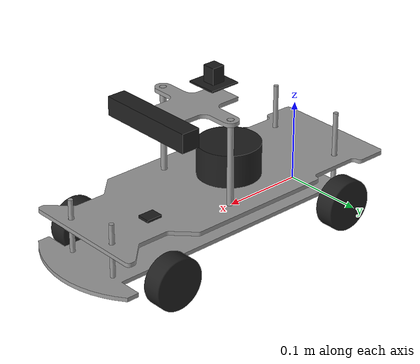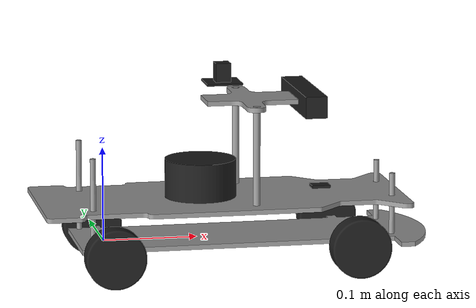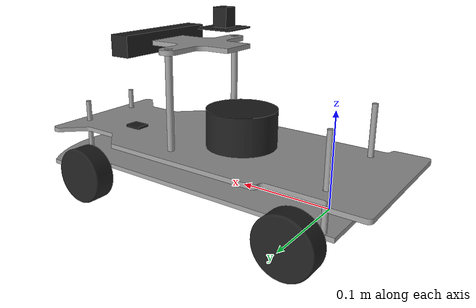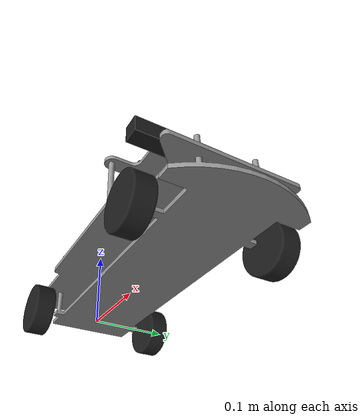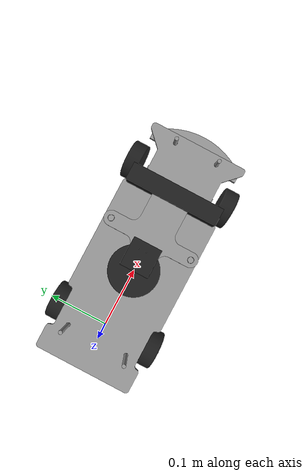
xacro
<?xml version="1.0"?>

<robot name="seat_car" xmlns:xacro="http://www.ros.org/wiki/xacro">

  <!-- Included URDF Files -->
  <xacro:include filename="$(find seat_car_description)/urdf/include/materials.xacro" />

  <xacro:include filename="$(find seat_car_description)/urdf/include/platform.xacro" />
  <xacro:include filename="$(find seat_car_description)/urdf/include/platform.gazebo" />

  <xacro:include filename="$(find seat_car_description)/urdf/include/sensors.xacro" />
  <xacro:include filename="$(find seat_car_description)/urdf/include/sensors.gazebo" />

  <!-- gazebo sensors -->
  <xacro:include filename="$(find seat_car_description)/urdf/include/sensors/imu.gazebo" />
  <xacro:include filename="$(find seat_car_description)/urdf/include/sensors/laser.gazebo" />
  <xacro:include filename="$(find seat_car_description)/urdf/include/sensors/front_camera.gazebo" />
  <xacro:include filename="$(find seat_car_description)/urdf/include/sensors/gps_camera.gazebo" />

</robot>

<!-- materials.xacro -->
<root xmlns:xacro="http://ros.org/wiki/xacro">

  <material name="blue">
    <color rgba="0 0 1 1.0"/>
  </material>

  <material name="green">
    <color rgba="0 1 0 1.0"/>
  </material>

  <material name="red">
    <color rgba="1 0 0 1.0"/>
  </material>

  <material name="orange">
    <color rgba="0.93 0.44 0.01 1.0"/>
  </material>

  <material name="black">
    <color rgba="0 0 0 1.0"/>
  </material>

  <material name="white">
    <color rgba="0.9 0.9 0.9 1.0"/>
  </material>

  <material name="purple">
    <color rgba="0.5 0.0 0.5 1.0"/>
  </material>

  <material name="yellow">
    <color rgba="1.0 1.0 0.0 1.0"/>
  </material>

  <material name="grey">
    <color rgba="0.4 0.4 0.4 1.0"/>
  </material>

</root>

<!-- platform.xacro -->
<robot name="seat_car" xmlns:xacro="http://www.ros.org/wiki/xacro">

  <!-- Included URDF Files -->

  <!-- base_footprint is a fictitious link(frame) that is on the ground right below base_link origin,
       navigation stack depends on this frame -->
  <link name="base_link">
    <inertial>
      <mass value="6" />
      <origin xyz="0.15971917 0.00000000 0.00197764" />
      <inertia ixx="0.0067970" ixy="0.0" ixz="-0.0008808"
               iyy="0.0784672" iyz="0.0"
               izz="0.0838770" />
    </inertial>
    <visual>
      <origin xyz="0 0 0" rpy="0 0 0" />
      <geometry>
        <mesh filename="package://seat_car_description/meshes/chassis.stl"/>
      </geometry>
      <material name="Grey" />
    </visual>
    <collision>
      <origin xyz="0 0 0" rpy="0 0 0" />
      <geometry>
        <mesh filename="package://seat_car_description/meshes/chassis.stl"/>
      </geometry>
    </collision>
  </link>

  <joint name="base_link_rear_left_wheel_joint" type="revolute">
    <origin xyz="0.0 -0.0825 0" rpy="1.5707 0 0" />
    <axis xyz="0 0 1" />
    <anchor xyz="0 0 0" />
    <parent link="base_link" />
    <child link="rear_left_wheel_link" />
    <limit lower="-1000000000000.0" upper="1000000000000.0" effort="3.0" velocity="124"/>
  </joint>

  <transmission name="tran_rear_left">
    <type>transmission_interface/SimpleTransmission</type>
    <joint name="base_link_rear_left_wheel_joint">
      <hardwareInterface>EffortJointInterface</hardwareInterface>
    </joint>
    <actuator name="rear_left_motor">
      <hardwareInterface>EffortJointInterface</hardwareInterface>
      <mechanicalReduction>1</mechanicalReduction>
    </actuator>
  </transmission>

  <link name="rear_left_wheel_link">
    <inertial>
      <mass value="1" />
      <origin xyz="0 0 0" rpy="0 0 0" />
      <inertia  ixx="0.0002946" ixy="0.0" ixz="0.0"
                iyy="0.0002946" iyz="0.0"
                izz="0.000494" />
    </inertial>
    <visual>
      <origin xyz="0 0 0" rpy="0 0 0" />
      <geometry>
        <mesh filename="package://seat_car_description/meshes/wheel.stl"/>
      </geometry>
      <material name="Black" />
    </visual>
    <collision>
      <origin xyz="0 0 0" rpy="0 0 0" />
      <geometry>
        <cylinder radius="0.0315" length="0.001"/>
      </geometry>
    </collision>
  </link>

  <joint name="base_link_rear_right_wheel_joint" type="revolute">
    <origin xyz="0.0 0.0825 0" rpy="-1.5707 0 0" />
    <axis xyz="0 0 1" />
    <anchor xyz="0 0 0" />
    <parent link="base_link" />
    <child link="rear_right_wheel_link" />
    <limit lower="-1000000000000.0" upper="1000000000000.0" effort="3.0" velocity="124"/>
  </joint>

  <transmission name="tran_rear_right">
    <type>transmission_interface/SimpleTransmission</type>
    <joint name="base_link_rear_right_wheel_joint">
      <hardwareInterface>EffortJointInterface</hardwareInterface>
    </joint>
    <actuator name="rear_right_motor">
      <hardwareInterface>EffortJointInterface</hardwareInterface>
      <mechanicalReduction>1</mechanicalReduction>
    </actuator>
  </transmission>

  <link name="rear_right_wheel_link">
    <inertial>
      <mass value="1" />
      <origin xyz="0 0 0" rpy="0 0 0" />
      <inertia  ixx="0.0002946" ixy="0.0" ixz="0.0"
                iyy="0.0002946" iyz="0.0"
                izz="0.0004940" />
    </inertial>
    <visual>
      <origin xyz="0 0 0" rpy="0 0 0" />
      <geometry>
        <mesh filename="package://seat_car_description/meshes/wheel.stl"/>
      </geometry>
      <material name="Black" />
    </visual>
    <collision>
      <origin xyz="0 0 0" rpy="0 0 0" />
      <geometry>
        <cylinder radius="0.0315" length="0.001"/>
      </geometry>
    </collision>
  </link>

  <joint name="base_link_front_left_axel_joint" type="revolute">
    <origin xyz="0.260 -0.0825 0" rpy="1.5707 0 0" />
    <axis xyz="0 1 0" />
    <anchor xyz="0 0 0" />
    <parent link="base_link" />
    <child link="front_left_axel_link" />
    <limit lower="-1.5707" upper="1.5707" effort="9.6" velocity="5.3"/>
    <dynamics damping="0.2"/>
  </joint>

  <transmission name="tran_front_left_axel">
    <type>transmission_interface/SimpleTransmission</type>
    <joint name="base_link_front_left_axel_joint">
      <hardwareInterface>EffortJointInterface</hardwareInterface>
    </joint>
    <actuator name="front_left_axel_motor">
      <hardwareInterface>EffortJointInterface</hardwareInterface>
      <mechanicalReduction>1</mechanicalReduction>
    </actuator>
  </transmission>

  <link name="front_left_axel_link">
    <inertial>
      <mass value="0.001" />
      <origin xyz="0 0 0" rpy="0 0 0" />
      <inertia  ixx="0.00001" ixy="0.0" ixz="0.0"
                iyy="0.00001" iyz="0.0"
                izz="0.00001" />
    </inertial>
  </link>

  <joint name="front_left_axel_front_left_wheel_joint" type="revolute">
    <origin xyz="0.0 0.0 0" rpy="0 0 0" />
    <axis xyz="0 0 1" />
    <anchor xyz="0 0 0" />
    <parent link="front_left_axel_link" />
    <child link="front_left_wheel_link" />
    <limit lower="-1000000000000.0" upper="1000000000000.0" effort="3.0" velocity="124"/>
  </joint>

  <transmission name="tran_front_left_wheel">
    <type>transmission_interface/SimpleTransmission</type>
    <joint name="front_left_axel_front_left_wheel_joint">
      <hardwareInterface>EffortJointInterface</hardwareInterface>
    </joint>
    <actuator name="front_left_wheel_motor">
      <hardwareInterface>EffortJointInterface</hardwareInterface>
      <mechanicalReduction>1</mechanicalReduction>
    </actuator>
  </transmission>

  <link name="front_left_wheel_link">
    <inertial>
      <mass value="1" />
      <origin xyz="0 0 0" rpy="0 0 0" />
      <inertia  ixx="0.0002946" ixy="0.0" ixz="0.0"
                iyy="0.0002946" iyz="0.0"
                izz="0.0004940" />
    </inertial>
    <visual>
      <origin xyz="0 0 0" rpy="0 0 0" />
      <geometry>
        <mesh filename="package://seat_car_description/meshes/wheel.stl"/>
      </geometry>
      <material name="Black" />
    </visual>
    <collision>
      <origin xyz="0 0 0" rpy="0 0 0" />
      <geometry>
        <cylinder radius="0.0315" length="0.001"/>
      </geometry>
    </collision>
  </link>

  <joint name="base_link_front_right_axel_joint" type="revolute">
    <origin xyz="0.260 0.0825 0" rpy="-1.5707 0 0" />
    <axis xyz="0 1 0" />
    <anchor xyz="0 0 0" />
    <parent link="base_link" />
    <child link="front_right_axel_link" />
    <limit lower="-1.5707" upper="1.5707" effort="9.6" velocity="5.3"/>
    <dynamics damping="0.2"/>
  </joint>

  <transmission name="tran_front_right_axel">
    <type>transmission_interface/SimpleTransmission</type>
    <joint name="base_link_front_right_axel_joint">
      <hardwareInterface>EffortJointInterface</hardwareInterface>
    </joint>
    <actuator name="front_right_axel_motor">
      <hardwareInterface>EffortJointInterface</hardwareInterface>
      <mechanicalReduction>1</mechanicalReduction>
    </actuator>
  </transmission>

  <link name="front_right_axel_link">
    <inertial>
      <mass value="0.001" />
      <origin xyz="0 0 0" rpy="0 0 0" />
      <inertia  ixx="0.00001" ixy="0.0" ixz="0.0"
                iyy="0.00001" iyz="0.0"
                izz="0.00001" />
    </inertial>
  </link>

  <joint name="front_right_axel_front_right_wheel_joint" type="continuous">
    <origin xyz="0.0 0.0 0" rpy="0 0 0" />
    <axis xyz="0 0 1" />
    <anchor xyz="0 0 0" />
    <parent link="front_right_axel_link" />
    <child link="front_right_wheel_link" />
    <limit lower="-1000000000000.0" upper="1000000000000.0" effort="3.0" velocity="124"/>
  </joint>

  <transmission name="tran_front_right_wheel">
    <type>transmission_interface/SimpleTransmission</type>
    <joint name="front_right_axel_front_right_wheel_joint">
      <hardwareInterface>EffortJointInterface</hardwareInterface>
    </joint>
    <actuator name="front_right_wheel_motor">
      <hardwareInterface>EffortJointInterface</hardwareInterface>
      <mechanicalReduction>1</mechanicalReduction>
    </actuator>
  </transmission>

  <link name="front_right_wheel_link">
    <inertial>
      <mass value="1" />
      <origin xyz="0 0 0" rpy="0 0 0" />
      <inertia  ixx="0.0002946" ixy="0.0" ixz="0.0"
                iyy="0.0002946" iyz="0.0"
                izz="0.0004940" />
    </inertial>
    <visual>
      <origin xyz="0 0 0" rpy="0 0 0" />
      <geometry>
        <mesh filename="package://seat_car_description/meshes/wheel.stl"/>
      </geometry>
      <material name="Black" />
    </visual>
    <collision>
      <origin xyz="0 0 0" rpy="0 0 0" />
      <geometry>
        <cylinder radius="0.0315" length="0.001"/>
      </geometry>
    </collision>
  </link>

</robot>

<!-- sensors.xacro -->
<robot name="seat_car" xmlns:xacro="http://www.ros.org/wiki/xacro">

  <!-- Included URDF Files -->

  <xacro:property name="PI" value="3.1415926535897931" />

  <link name="sensor_board">
    <inertial>
      <mass value="6" />
      <origin xyz="0.12043628 0.00000000 0.00171950" rpy="0 0 0"/>
      <inertia ixx="0.0123739" ixy="0.0" ixz="0.0003463"
               iyy="0.0711051" iyz="0.0"
               izz="0.0820107" />
    </inertial>
    <visual>
      <origin xyz="0.0 0.0 0.0" rpy="0 0 0"/>
      <geometry>
        <mesh filename="package://seat_car_description/meshes/sensor_board.stl" />
      </geometry>
      <material name="Grey" />
    </visual>
    <collision>
      <origin xyz="0.0 0.0 0.0" rpy="0 0 0"/>
      <geometry>
        <mesh filename="package://seat_car_description/meshes/sensor_board.stl" />
      </geometry>
    </collision>
  </link>

  <joint name="base_link_sensor_board" type="fixed" >
    <parent link="base_link"/>
    <child link="sensor_board"/>
    <origin xyz="0 0 0.0415" rpy="0 0 0"/>
  </joint>

  <link name="camera_board">
    <inertial>
      <mass value="0.6000000" />
      <origin xyz="0.04901990 0.00000000 0.00000000" rpy="0 0 0"/>
      <inertia ixx="0.0003816" ixy="0.0" ixz="0.0"
               iyy="0.0003420" iyz="0.0"
               izz="0.0007211" />
    </inertial>
    <visual>
      <origin xyz="0.0 0.0 0.0" rpy="0 0 0"/>
      <geometry>
        <mesh filename="package://seat_car_description/meshes/camera_board.stl" />
      </geometry>
      <material name="Grey" />
    </visual>
    <collision>
      <origin xyz="0.0 0.0 0.0" rpy="0 0 0"/>
      <geometry>
        <mesh filename="package://seat_car_description/meshes/camera_board.stl" />
      </geometry>
    </collision>
  </link>

  <joint name="sensor_board_camera_board" type="fixed" >
    <parent link="sensor_board"/>
    <child link="camera_board"/>
    <origin xyz="0.109 0 0.105" rpy="0 0 0"/>
  </joint>

  <!--*               Sensors                         *-->

  <!-- IMU -->
  <link name="imu">
    <inertial>
      <mass value="0.0200000" />
      <origin xyz="0.00000000 0.00000000 0.00150000" rpy="0 0 0"/>
      <inertia ixx="0.0000007" ixy="0.0" ixz="0.0"
               iyy="0.0000004" iyz="0.0"
               izz="0.0000011" />
    </inertial>
    <visual>
      <origin xyz="0 0 0" rpy="0 0 0"/>
      <geometry>
        <mesh filename="package://seat_car_description/meshes/IMU.stl" />
      </geometry>
      <material name="Black" />
    </visual>
    <collision>
      <origin xyz="0 0 0" rpy="0 0 0"/>
      <geometry>
        <mesh filename="package://seat_car_description/meshes/IMU.stl" />
      </geometry>
    </collision>
  </link>

  <joint name="sensor_board_imu" type="fixed" >
    <parent link="sensor_board"/>
    <child link="imu"/>
    <origin xyz="0.239 0.02 0.0025" rpy="0 0 ${PI/2}"/>
  </joint>

  <!-- RP_LIDAR -->
  <link name="laser">
    <inertial>
      <mass value="1.8362923" />
      <origin xyz="0.0000000 0.0000000 -0.01040000" rpy="0 0 0"/>
      <inertia ixx="0.0009124" ixy="0.0" ixz="0.0"
               iyy="0.0009124" iyz="0.0"
               izz="0.0013154" />
    </inertial>
    <visual>
      <origin xyz="0 0 0" rpy="0 0 0"/>
      <geometry>
        <mesh filename="package://seat_car_description/meshes/RP-LIDAR.stl" />
      </geometry>
      <material name="Black" />
    </visual>
    <collision>
      <origin xyz="0 0 0" rpy="0 0 0"/>
      <geometry>
        <mesh filename="package://seat_car_description/meshes/RP-LIDAR.stl" />
      </geometry>
    </collision>
  </link>

  <joint name="sensor_board_laser" type="fixed" >
    <parent link="sensor_board"/>
    <child link="laser"/>
    <origin xyz="0.10445 0 0.0333" rpy="0 0 -${PI}"/>
  </joint>

  <!-- GPS camera -->
  <link name="camera">
    <inertial>
      <mass value="0.1600000" />
      <origin xyz="0.00000000 0.00000000 -0.01396703" rpy="0 0 0"/>
      <inertia ixx="0.0000170" ixy="0.0" ixz="0.0"
               iyy="0.0000170" iyz="0.0"
               izz="0.0000183" />
    </inertial>
    <visual>
      <origin xyz="0 0 0" rpy="0 0 0"/>
      <geometry>
        <mesh filename="package://seat_car_description/meshes/gps_camera.stl" />
      </geometry>
      <material name="Black" />
    </visual>
    <collision>
      <origin xyz="0 0 0" rpy="0 0 0"/>
      <geometry>
        <mesh filename="package://seat_car_description/meshes/gps_camera.stl" />
      </geometry>
    </collision>
  </link>

  <joint name="camera_board_camera" type="fixed" >
    <parent link="camera_board"/>
    <child link="camera"/>
    <origin xyz="0.019 0 0.0405" rpy="0 0 0"/>
  </joint>

  <link name="camera_optical">
  </link>

  <joint name="camera_camera_optical" type="fixed" >
    <parent link="camera"/>
    <child link="camera_optical"/>
    <origin xyz="0.0 0 0.0" rpy="0 -${PI/2} 0"/>
  </joint>

  <!-- Creative camera -->
  <link name="camera_link">
    <inertial>
      <mass value="1.3000000" />
      <origin xyz="0.00000000 0.00000000 -0.01150000" rpy="0 0 0"/>
      <inertia ixx="0.0017500" ixy="0.0" ixz="0.0"
               iyy="0.0001146" iyz="0.0"
               izz="0.0017500" />
    </inertial>
    <visual>
      <origin xyz="0 0 0" rpy="0 0 0"/>
      <geometry>
        <mesh filename="package://seat_car_description/meshes/creative_camera.stl" />
      </geometry>
      <material name="Black" />
    </visual>
    <collision>
      <origin xyz="0 0 0" rpy="0 0 0"/>
      <geometry>
        <mesh filename="package://seat_car_description/meshes/creative_camera.stl" />
      </geometry>
    </collision>
  </link>

  <joint name="camera_board_camera_link" type="fixed" >
    <parent link="camera_board"/>
    <child link="camera_link"/>
    <origin xyz="0.119 0 0.0" rpy="0 ${PI/2} 0"/>
  </joint>

  <link name="camera_rgb_frame">
  </link>

  <joint name="camera_link_camera_rgb_frame" type="fixed" >
    <parent link="camera_link"/>
    <child link="camera_rgb_frame"/>
    <origin xyz="0.0 0 0.0" rpy="0 0 0"/>
  </joint>

  <link name="camera_depth_frame">
  </link>

  <joint name="camera_link_camera_depth_frame" type="fixed" >
    <parent link="camera_link"/>
    <child link="camera_depth_frame"/>
    <origin xyz="0.0 0 0.0" rpy="0 0 0"/>
  </joint>

  <link name="camera_rgb_optical_frame">
  </link>

  <joint name="camera_link_camera_rgb_optical_frame" type="fixed" >
    <parent link="camera_link"/>
    <child link="camera_rgb_optical_frame"/>
    <origin xyz="0.0 0 0.0" rpy="${PI/2} -${PI/2} 0"/>
  </joint>

  <link name="camera_depth_optical_frame">
  </link>

  <joint name="camera_link_camera_depth_optical_frame" type="fixed" >
    <parent link="camera_link"/>
    <child link="camera_depth_optical_frame"/>
    <origin xyz="0.0 0 0.0" rpy="${PI/2} -${PI/2} 0"/>
  </joint>

  <link name="camera_link2">
  </link>

  <joint name="camera_board_camera_link2" type="fixed" >
    <parent link="camera_board"/>
    <child link="camera_link2"/>
    <origin xyz="0.119 0 0.0" rpy="0 0 0"/>
  </joint>

  <link name="camera_rgb_optical_frame2">
  </link>

  <joint name="camera_link_camera_rgb_optical_frame2" type="fixed" >
    <parent link="camera_link2"/>
    <child link="camera_rgb_optical_frame2"/>
    <origin xyz="0 0 0" rpy="-${PI/2} 0 -${PI/2}"/>
  </joint>

</robot>
